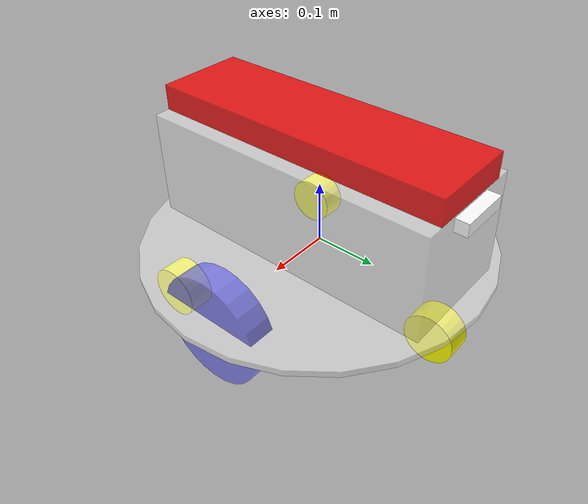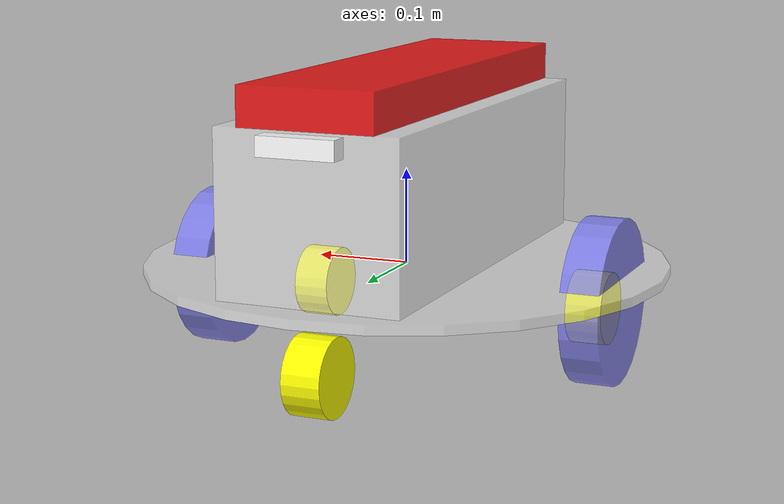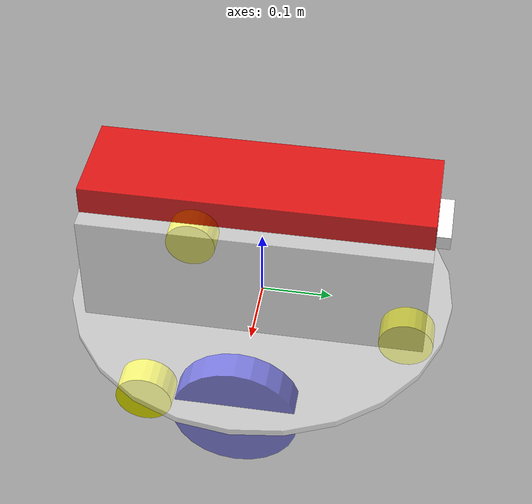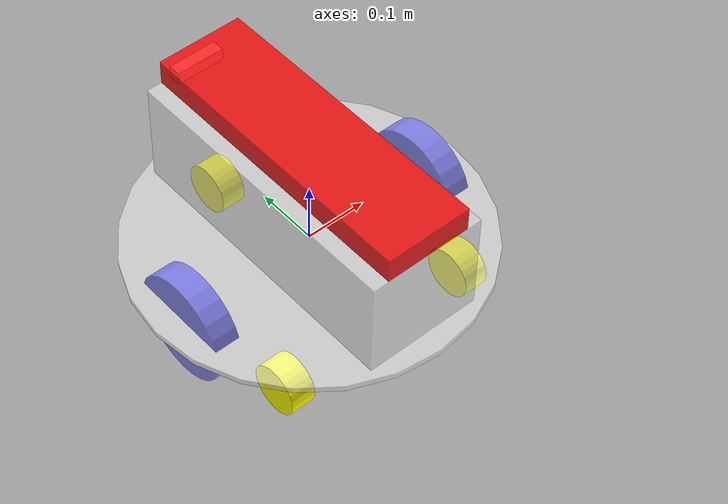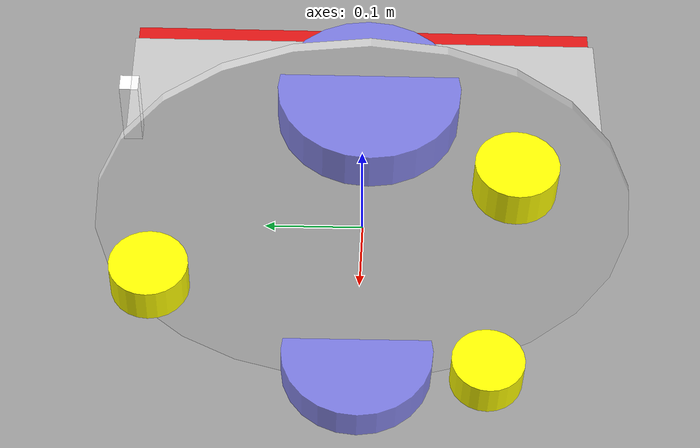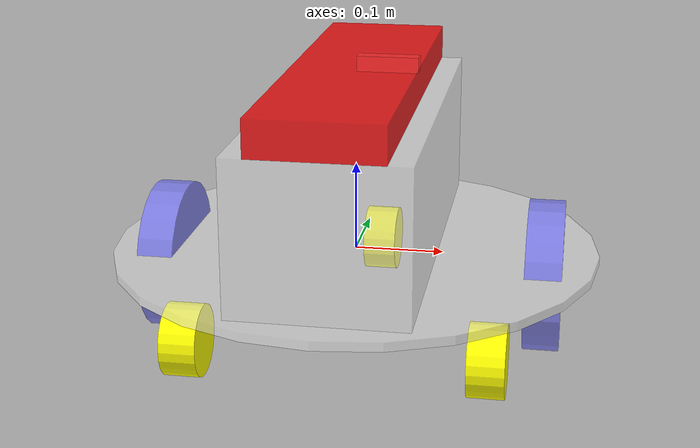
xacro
<?xml version="1.0"?>
<!-- 机器人的名字 -->
<robot xmlns:xacro="http://www.ros.org/wiki/xacro" name="robot">

    <!-- 主体框架 -->
    <xacro:include filename="$(find move_cpp)/urdf/robot/frame/base.xacro"/>
    <xacro:include filename="$(find move_cpp)/urdf/robot/frame/up.xacro"/>
    <!-- 执行器 -->
    <xacro:include filename="$(find move_cpp)/urdf/robot/actuator/driving_wheel.xacro"/>
    <xacro:include filename="$(find move_cpp)/urdf/robot/actuator/passive_wheel.xacro"/>

    <!-- 传感器 -->
    <xacro:include filename="$(find move_cpp)/urdf/robot/sensor/camera.xacro"/>

    <xacro:base_xacro radius="0.275" length="0.01"/>
    <xacro:up_xacro link_xyz="0.19 0.48 0.175" joint_xyz="0.0 0.0 0.085"/>

    <xacro:driving_wheel_xacro wheel_name="left_driving_wheel" joint_xyz="-0.215 0.0 -0.02"/>
    <xacro:driving_wheel_xacro wheel_name="right_driving_wheel" joint_xyz="0.215 0.0 -0.02"/>

    <xacro:passive_wheel_xacro wheel_name="front_passive_wheel" joint_xyz="0.0 0.215 -0.065"/>
    <xacro:passive_wheel_xacro wheel_name="rear_left_passive_wheel" joint_xyz="-0.163 -0.140 -0.065"/>
    <xacro:passive_wheel_xacro wheel_name="rear_passive_wheel" joint_xyz="0.163 -0.140 -0.065"/>

    <xacro:camera_xacro joint_xyz="0.0 0.25 0.16"/>

</robot>

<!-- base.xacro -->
<!-- 机器人的名字 -->
<robot xmlns:xacro="http://www.ros.org/wiki/xacro">
    <xacro:macro name="base_xacro" params="length radius">
        <!-- 机器人的身体部分 -->
        <link name="base_link">
            <!-- 部件的外观描述 -->
            <visual>
                <!-- 沿着自己几何中心的偏移和旋转量 -->
                <origin xyz="0.0 0.0 0.0" rpy="0.0 0.0 0.0"/>
                <!-- 几何形状 -->
                <geometry>
                    <!-- cylinder:圆柱体;radius:半径:0.1m;length:高度:0.12m; -->
                    <cylinder radius="${radius}" length="${length}"/>
                </geometry>
                <!-- 材质颜色 -->
                <material name="white">
                    <color rgba="1.0 1.0 1.0 0.5"/>
                </material>
            </visual>
        </link>
    </xacro:macro>
</robot>

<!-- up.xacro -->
<!-- 机器人的名字 -->
<robot xmlns:xacro="http://www.ros.org/wiki/xacro">

    <xacro:macro name="up_xacro" params="link_xyz joint_xyz">

        <!-- 机器人的身体部分 -->
        <link name="up_link">
            <!-- 部件的外观描述 -->
            <visual>
                <!-- 沿着自己几何中心的偏移和旋转量 -->
                <origin xyz="0.0 0.0 0.0" rpy="0.0 0.0 0.0"/>
                <!-- 几何形状 -->
                <geometry>
                    <box size="${link_xyz}"/>
                </geometry>
                <!-- 材质颜色 -->
                <material name="white">
                    <color rgba="1.0 1.0 1.0 0.5"/>
                </material>
            </visual>
            <visual>
                <!-- 沿着自己几何中心的偏移和旋转量 -->
                <origin xyz="0.0 0.0 0.1075" rpy="0.0 0.0 0.0"/>
                <!-- 几何形状 -->
                <geometry>
                    <box size="0.14 0.48 0.04"/>
                </geometry>
                <!-- 材质颜色 -->
                <material name="up_color">
                    <color rgba="1.0 0.0 0.0 0.8"/>
                </material>
            </visual>
        </link>
        <!-- 关节 关节类型为固定-->
        <joint name="up_joint" type="fixed">
            <!-- 将子部件以固定方式连接在父部件上,固定的偏移量参考父部件的坐标 -->
            <!-- 固定位置 -->
            <origin xyz="${joint_xyz}" rpy="0.0 0.0 0.0"/>
            <!-- 父部件 -->
            <parent link="base_link"/>
            <!-- 子部件 -->
            <child link="up_link"/>
        </joint>
    </xacro:macro>
</robot>

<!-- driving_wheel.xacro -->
<!-- 机器人的名字 -->
<robot xmlns:xacro="http://www.ros.org/wiki/xacro">
    <!-- driving wheel 驱动轮-->
    <xacro:macro name="driving_wheel_xacro" params="wheel_name joint_xyz">
        <!-- 机器人的身体部分 -->
        <link name="${wheel_name}_link">
            <!-- 部件的外观描述 -->
            <visual>
                <!-- 沿着自己几何中心的偏移和旋转量 -->
                <origin xyz="0.0 0.0 0.0" rpy="0.0 1.57079 0.0"/>
                <!-- 几何形状 -->
                <geometry>
                    <!-- cylinder:圆柱体;radius:半径:0.1m;length:高度:0.12m; -->
                    <cylinder radius="0.085" length="0.04"/>
                </geometry>
                <!-- 材质颜色 -->
                <material name="blue">
                    <color rgba="0.5 0.5 1.0 0.8"/>
                </material>
            </visual>
        </link>
        <!-- 关节 关节类型为可转动的-->
        <joint name="${wheel_name}_joint" type="continuous">
            <!-- 将子部件以固定方式连接在父部件上,固定的偏移量参考父部件的坐标 -->
            <!-- 固定位置 -->
            <origin xyz="${joint_xyz}" rpy="0.0 0.0 0.0"/>
            <!-- 父部件 -->
            <parent link="base_link"/>
            <!-- 子部件 -->
            <child link="${wheel_name}_link"/>
            <axis xyz="1 0.0 0.0"/>
        </joint>
    </xacro:macro>
</robot>

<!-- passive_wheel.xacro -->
<!-- 机器人的名字 -->
<robot xmlns:xacro="http://www.ros.org/wiki/xacro">
    <!-- passive wheel 被动轮-->
    <xacro:macro name="passive_wheel_xacro" params="wheel_name joint_xyz">
        <!-- 机器人的身体部分 -->
        <link name="${wheel_name}_link">
            <!-- 部件的外观描述 -->
            <visual>
                <!-- 沿着自己几何中心的偏移和旋转量 -->
                <origin xyz="0.0 0.0 0.0" rpy="0.0 1.57079 0.0"/>
                <!-- 几何形状 -->
                <geometry>
                    <!-- cylinder:圆柱体;radius:半径:0.1m;length:高度:0.12m; -->
                    <cylinder radius="0.04" length="0.04"/>
                </geometry>
                <!-- 材质颜色 -->
                <material name="yellow">
                    <color rgba="1.0 1.0 0.0 1.0"/>
                </material>
            </visual>
        </link>
        <!-- 关节 关节类型为可转动的-->
        <joint name="${wheel_name}_joint" type="continuous">
            <!-- 将子部件以固定方式连接在父部件上,固定的偏移量参考父部件的坐标 -->
            <!-- 固定位置 -->
            <origin xyz="${joint_xyz}" rpy="0.0 0.0 0.0"/>
            <!-- 父部件 -->
            <parent link="base_link"/>
            <!-- 子部件 -->
            <child link="${wheel_name}_link"/>
            <axis xyz="1 0.0 1"/>
        </joint>
    </xacro:macro>
</robot>

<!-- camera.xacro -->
<!-- 机器人的名字 -->
<robot xmlns:xacro="http://www.ros.org/wiki/xacro">
    <xacro:macro name="camera_xacro" params="joint_xyz">
        <!-- 机器人的身体部分 -->
        <link name="camera_link">
            <!-- 部件的外观描述 -->
            <visual>
                <!-- 沿着自己几何中心的偏移和旋转量 -->
                <origin xyz="0.0 0.0 0.0" rpy="0.0 0.0 0.0"/>
                <!-- 几何形状 -->
                <geometry>
                    <box size="0.08 0.02 0.02"/>
                </geometry>
                <!-- 材质颜色 -->
                <material name="white">
                    <color rgba="1.0 1.0 1.0 1"/>
                </material>
            </visual>
        </link>
        <!-- 关节 关节类型为固定-->
        <joint name="camera_joint" type="fixed">
            <!-- 将子部件以固定方式连接在父部件上,固定的偏移量参考父部件的坐标 -->
            <!-- 固定位置 -->
            <origin xyz="${joint_xyz}" rpy="0.0 0.0 0.0"/>
            <!-- 父部件 -->
            <parent link="base_link"/>
            <!-- 子部件 -->
            <child link="camera_link"/>

        </joint>
    </xacro:macro>
</robot>
